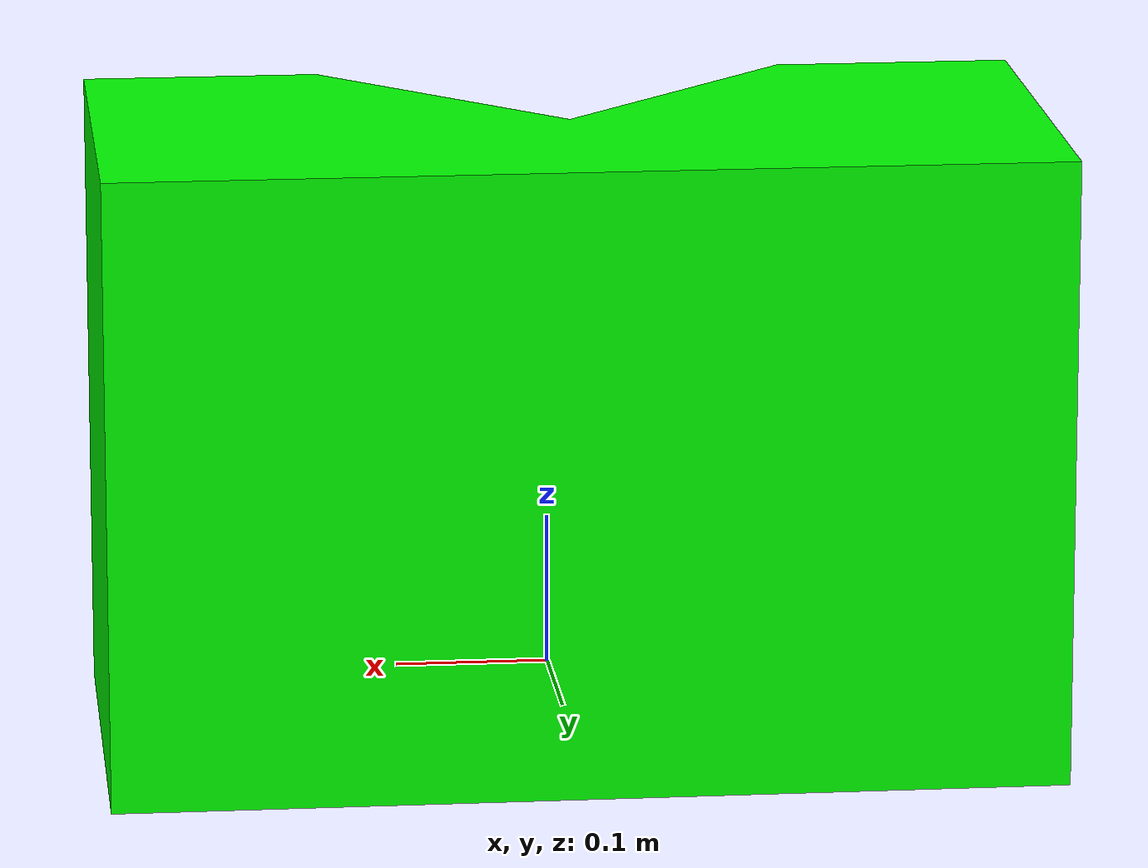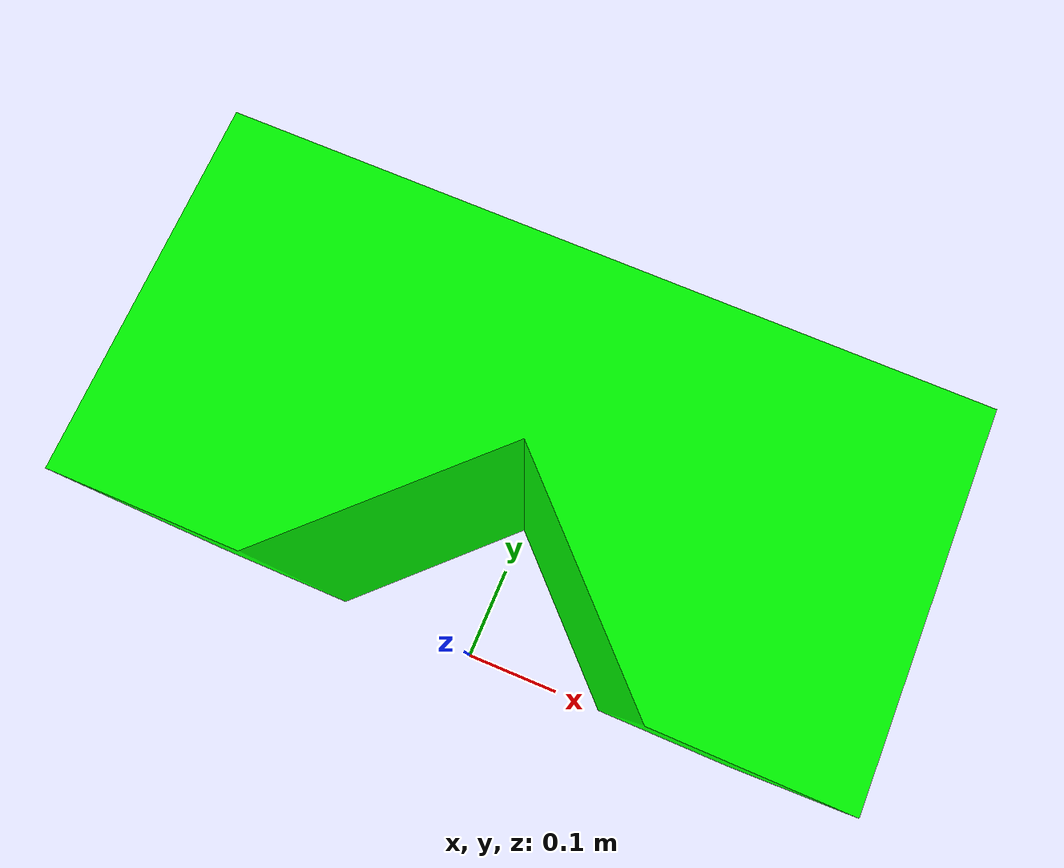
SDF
<?xml version="1.0" ?>
<sdf version="1.8">
    <model name="my_box">
      <link name="box_link">
        <inertial>
          <inertia>
            <ixx>1</ixx>
            <ixy>0</ixy>
            <ixz>0</ixz>
            <iyy>1</iyy>
            <iyz>0</iyz>
            <izz>1</izz>
          </inertia>
          <mass>1.0</mass>
        </inertial>
        <collision name="box_collision">
          <geometry>
            <box>
              <size>1 1 1</size>
            </box>
          </geometry>
        </collision>

        <visual name="box_visual">
          <geometry>
            <mesh>
              <uri>meshes/laser_marker.stl</uri>
              <scale>0.001 0.001 0.001</scale>
            </mesh>
          </geometry>
          <material>
            <ambient>0 1 0 1</ambient>
            <diffuse>0 1 0 1</diffuse>
            <specular>0 1 0 1</specular>
          </material>
        </visual>
      </link>
    </model>
</sdf>
